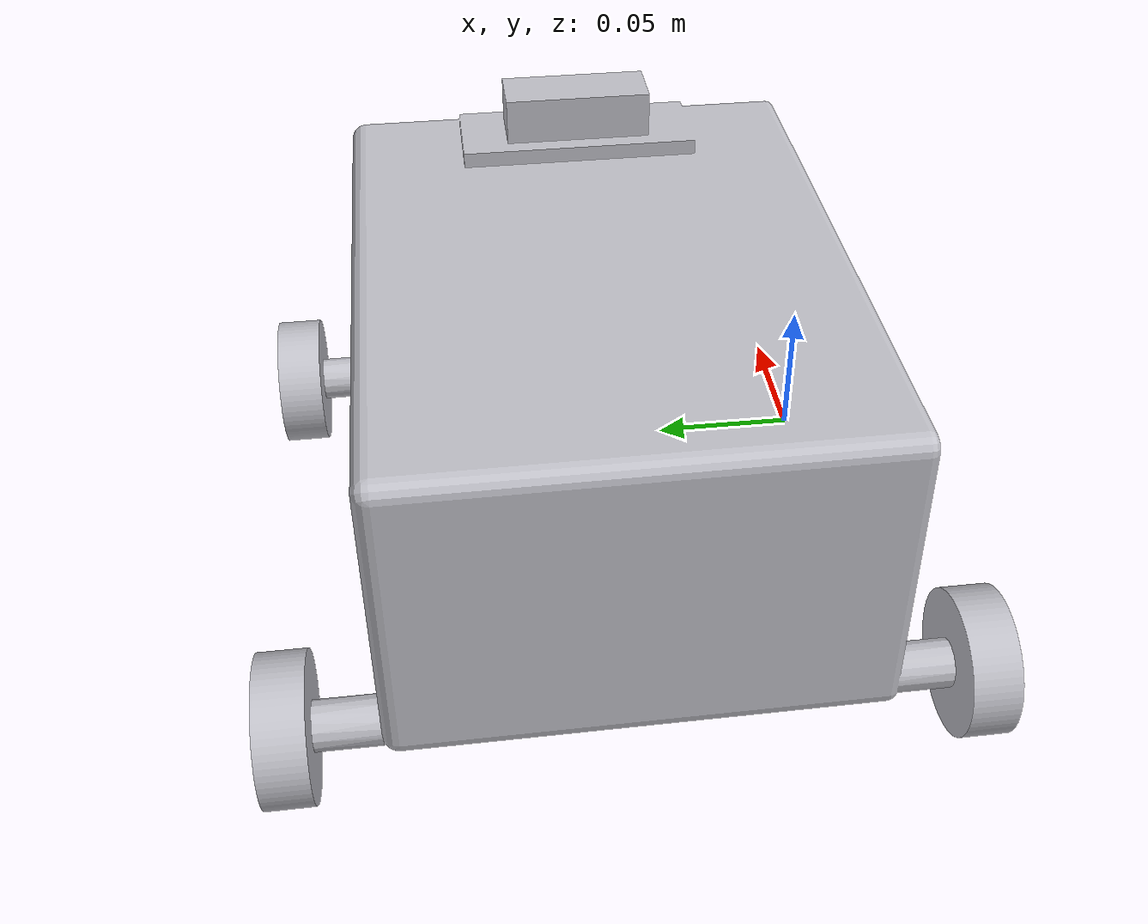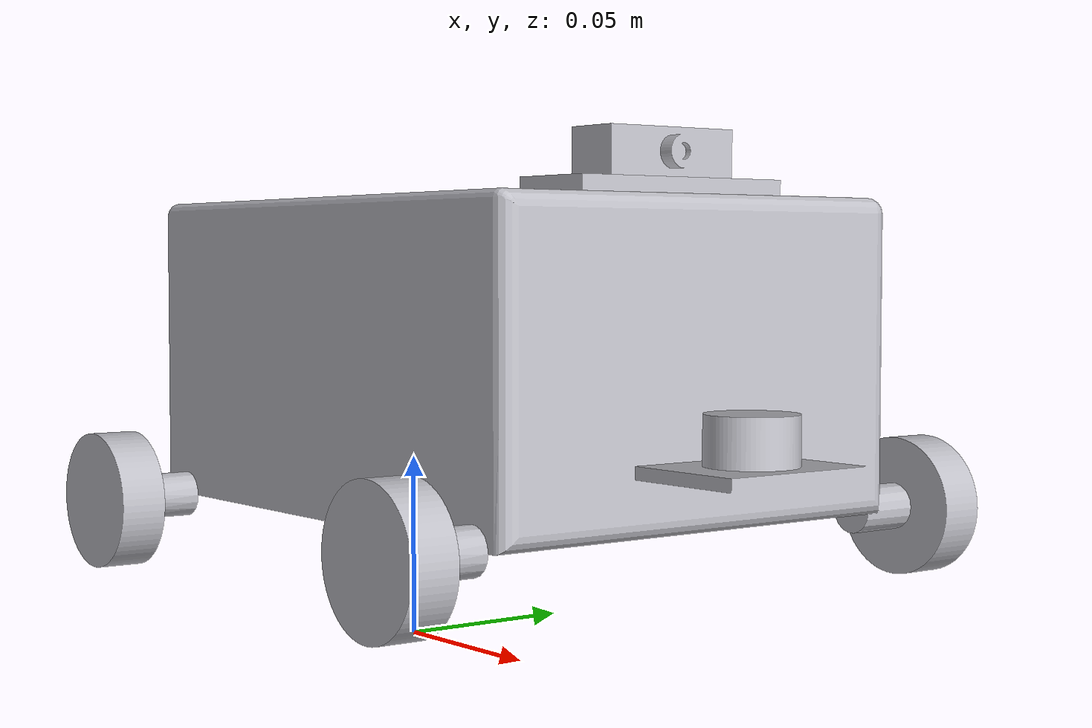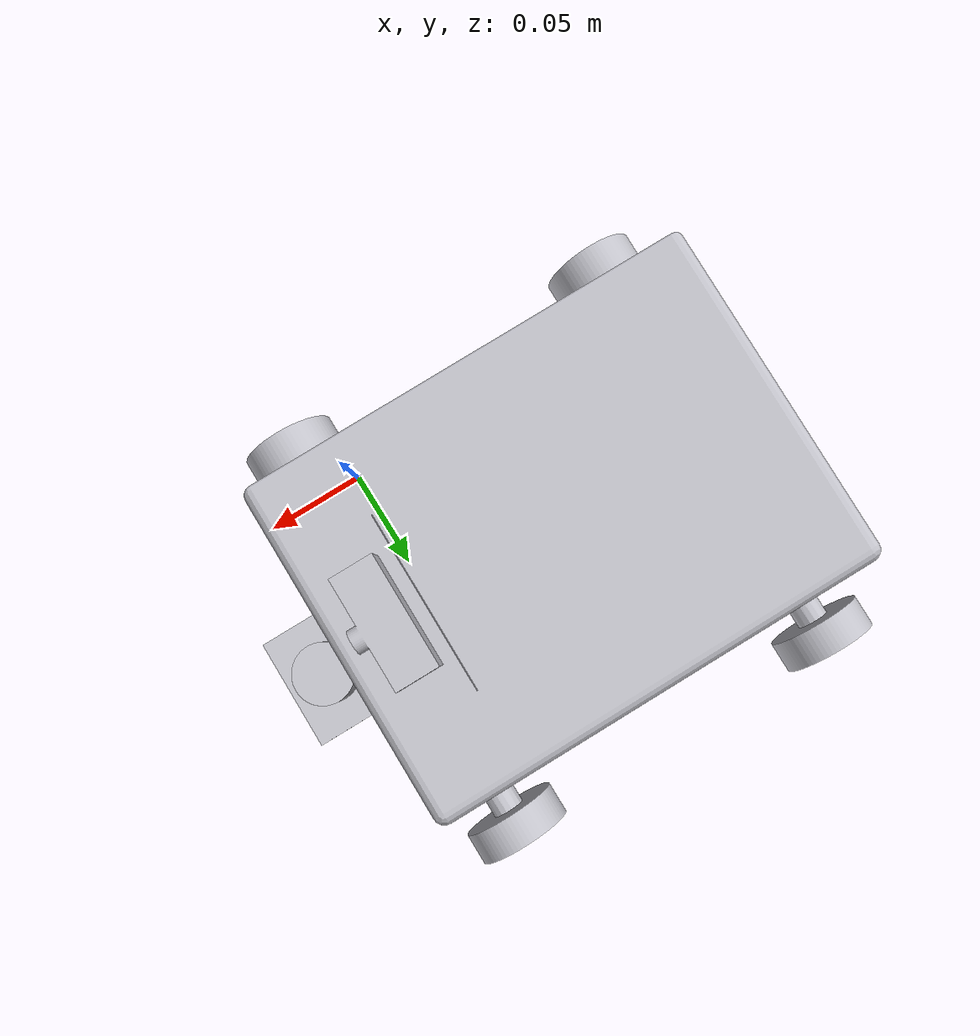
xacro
<?xml version="1.0" ?>
<robot name="rover" xmlns:xacro="http://www.ros.org/wiki/xacro">

<xacro:include filename="$(find rover_description)/urdf/materials.xacro" />
<xacro:include filename="$(find rover_description)/urdf/rover.trans" />
<xacro:include filename="$(find rover_description)/urdf/rover.gazebo" />
<link name="base_link">
  <inertial>
    <origin xyz="-0.06652261192800131 0.08242126200804338 0.07439492482956955" rpy="0 0 0"/>
    <mass value="23.767137838378318"/>
    <inertia ixx="0.064958" iyy="0.100462" izz="0.125192" ixy="5e-06" iyz="2.3e-05" ixz="-0.000117"/>
  </inertial>
  <visual>
    <origin xyz="0 0 0" rpy="0 0 0"/>
    <geometry>
      <mesh filename="package://rover_description/meshes/base_link.stl" scale="0.001 0.001 0.001"/>
    </geometry>
    <material name="silver"/>
  </visual>
  <collision>
    <origin xyz="0 0 0" rpy="0 0 0"/>
    <geometry>
      <mesh filename="package://rover_description/meshes/base_link.stl" scale="0.001 0.001 0.001"/>
    </geometry>
  </collision>
</link>

<link name="left_front_1">
  <inertial>
    <origin xyz="1.5586734620001708e-07 0.007500424124712135 3.8323520329397454e-07" rpy="0 0 0"/>
    <mass value="0.18727328332360021"/>
    <inertia ixx="2.7e-05" iyy="4.7e-05" izz="2.7e-05" ixy="-0.0" iyz="-0.0" ixz="-0.0"/>
  </inertial>
  <visual>
    <origin xyz="-0.017873 -0.177461 -0.024533" rpy="0 0 0"/>
    <geometry>
      <mesh filename="package://rover_description/meshes/left_front_1.stl" scale="0.001 0.001 0.001"/>
    </geometry>
    <material name="silver"/>
  </visual>
  <collision>
    <origin xyz="-0.017873 -0.177461 -0.024533" rpy="0 0 0"/>
    <geometry>
      <mesh filename="package://rover_description/meshes/left_front_1.stl" scale="0.001 0.001 0.001"/>
    </geometry>
  </collision>
</link>

<link name="left_back_1">
  <inertial>
    <origin xyz="1.558673462243032e-07 0.007500424124712107 3.8323520329397454e-07" rpy="0 0 0"/>
    <mass value="0.1872732833236003"/>
    <inertia ixx="2.7e-05" iyy="4.7e-05" izz="2.7e-05" ixy="0.0" iyz="-0.0" ixz="-0.0"/>
  </inertial>
  <visual>
    <origin xyz="0.152127 -0.177461 -0.024533" rpy="0 0 0"/>
    <geometry>
      <mesh filename="package://rover_description/meshes/left_back_1.stl" scale="0.001 0.001 0.001"/>
    </geometry>
    <material name="silver"/>
  </visual>
  <collision>
    <origin xyz="0.152127 -0.177461 -0.024533" rpy="0 0 0"/>
    <geometry>
      <mesh filename="package://rover_description/meshes/left_back_1.stl" scale="0.001 0.001 0.001"/>
    </geometry>
  </collision>
</link>

<link name="right_front_1">
  <inertial>
    <origin xyz="1.5586734622083376e-07 -0.007499575875287856 3.8323520329397454e-07" rpy="0 0 0"/>
    <mass value="0.18727328332360027"/>
    <inertia ixx="2.7e-05" iyy="4.7e-05" izz="2.7e-05" ixy="0.0" iyz="0.0" ixz="0.0"/>
  </inertial>
  <visual>
    <origin xyz="-0.017873 0.012539 -0.024533" rpy="0 0 0"/>
    <geometry>
      <mesh filename="package://rover_description/meshes/right_front_1.stl" scale="0.001 0.001 0.001"/>
    </geometry>
    <material name="silver"/>
  </visual>
  <collision>
    <origin xyz="-0.017873 0.012539 -0.024533" rpy="0 0 0"/>
    <geometry>
      <mesh filename="package://rover_description/meshes/right_front_1.stl" scale="0.001 0.001 0.001"/>
    </geometry>
  </collision>
</link>

<link name="right_back_1">
  <inertial>
    <origin xyz="1.5586734625205878e-07 -0.007499575875287852 3.8323520329397454e-07" rpy="0 0 0"/>
    <mass value="0.1872732833236003"/>
    <inertia ixx="2.7e-05" iyy="4.7e-05" izz="2.7e-05" ixy="-0.0" iyz="0.0" ixz="0.0"/>
  </inertial>
  <visual>
    <origin xyz="0.152127 0.012539 -0.024533" rpy="0 0 0"/>
    <geometry>
      <mesh filename="package://rover_description/meshes/right_back_1.stl" scale="0.001 0.001 0.001"/>
    </geometry>
    <material name="silver"/>
  </visual>
  <collision>
    <origin xyz="0.152127 0.012539 -0.024533" rpy="0 0 0"/>
    <geometry>
      <mesh filename="package://rover_description/meshes/right_back_1.stl" scale="0.001 0.001 0.001"/>
    </geometry>
  </collision>
</link>

<link name="lidar_1_1">
  <inertial>
    <origin xyz="1.5586734618960874e-07 0.0 0.007499985675995635" rpy="0 0 0"/>
    <mass value="0.07261301850054172"/>
    <inertia ixx="5e-06" iyy="5e-06" izz="7e-06" ixy="-0.0" iyz="0.0" ixz="0.0"/>
  </inertial>
  <visual>
    <origin xyz="-0.052873 -0.08 -0.046509" rpy="0 0 0"/>
    <geometry>
      <mesh filename="package://rover_description/meshes/lidar_1_1.stl" scale="0.001 0.001 0.001"/>
    </geometry>
    <material name="silver"/>
  </visual>
  <collision>
    <origin xyz="-0.052873 -0.08 -0.046509" rpy="0 0 0"/>
    <geometry>
      <mesh filename="package://rover_description/meshes/lidar_1_1.stl" scale="0.001 0.001 0.001"/>
    </geometry>
  </collision>
</link>

<link name="camera_1_1">
  <inertial>
    <origin xyz="0.00030250800131195396 4.241246829850276e-07 0.007502778404434668" rpy="0 0 0"/>
    <mass value="0.10501147446471709"/>
    <inertia ixx="2.1e-05" iyy="5e-06" izz="2.3e-05" ixy="0.0" iyz="0.0" ixz="-0.0"/>
  </inertial>
  <visual>
    <origin xyz="-0.007952 -0.081211 -0.129533" rpy="0 0 0"/>
    <geometry>
      <mesh filename="package://rover_description/meshes/camera_1_1.stl" scale="0.001 0.001 0.001"/>
    </geometry>
    <material name="silver"/>
  </visual>
  <collision>
    <origin xyz="-0.007952 -0.081211 -0.129533" rpy="0 0 0"/>
    <geometry>
      <mesh filename="package://rover_description/meshes/camera_1_1.stl" scale="0.001 0.001 0.001"/>
    </geometry>
  </collision>
</link>

<joint name="Rev1" type="continuous">
  <origin xyz="0.017873 0.177461 0.024533" rpy="0 0 0"/>
  <parent link="base_link"/>
  <child link="left_front_1"/>
  <axis xyz="0.0 1.0 0.0"/>
</joint>

<joint name="Rev2" type="continuous">
  <origin xyz="-0.152127 0.177461 0.024533" rpy="0 0 0"/>
  <parent link="base_link"/>
  <child link="left_back_1"/>
  <axis xyz="0.0 1.0 0.0"/>
</joint>

<joint name="Rev3" type="continuous">
  <origin xyz="0.017873 -0.012539 0.024533" rpy="0 0 0"/>
  <parent link="base_link"/>
  <child link="right_front_1"/>
  <axis xyz="0.0 -1.0 0.0"/>
</joint>

<joint name="Rev4" type="continuous">
  <origin xyz="-0.152127 -0.012539 0.024533" rpy="0 0 0"/>
  <parent link="base_link"/>
  <child link="right_back_1"/>
  <axis xyz="0.0 -1.0 0.0"/>
</joint>

<joint name="Rigid5" type="fixed">
  <origin xyz="0.052873 0.08 0.046509" rpy="0 0 0"/>
  <parent link="base_link"/>
  <child link="lidar_1_1"/>
</joint>

<joint name="Rigid6" type="fixed">
  <origin xyz="0.007952 0.081211 0.129533" rpy="0 0 0"/>
  <parent link="base_link"/>
  <child link="camera_1_1"/>
</joint>

</robot>

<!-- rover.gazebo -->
<robot name="rover" xmlns:xacro="http://www.ros.org/wiki/xacro" >

<xacro:property name="body_color" value="Gazebo/Silver" />
<xacro:property name="body_wheel" value="Gazebo/Black" />
<xacro:property name="body_lidar" value="Gazebo/Blue" />
<xacro:property name="body_camera" value="Gazebo/Green" />

<gazebo>
  <plugin name="control" filename="libgazebo_ros_control.so"/>
</gazebo>
<gazebo reference="base_link">
  <material>${body_color}</material>
  <mu1>0.2</mu1>
  <mu2>0.2</mu2>
  <selfCollide>true</selfCollide>
  <gravity>true</gravity>
</gazebo>

<gazebo reference="left_front_1">
  <material>${body_wheel}</material>
  <mu1>0.2</mu1>
  <mu2>0.2</mu2>
  <selfCollide>true</selfCollide>
</gazebo>

<gazebo reference="left_back_1">
  <material>${body_wheel}</material>
  <mu1>0.2</mu1>
  <mu2>0.2</mu2>
  <selfCollide>true</selfCollide>
</gazebo>

<gazebo reference="right_front_1">
  <material>${body_wheel}</material>
  <mu1>0.2</mu1>
  <mu2>0.2</mu2>
  <selfCollide>true</selfCollide>
</gazebo>

<gazebo reference="right_back_1">
  <material>${body_wheel}</material>
  <mu1>0.2</mu1>
  <mu2>0.2</mu2>
  <selfCollide>true</selfCollide>
</gazebo>

<gazebo reference="lidar_1_1">
  <material>${body_lidar}</material>
  <mu1>0.2</mu1>
  <mu2>0.2</mu2>
  <selfCollide>true</selfCollide>
</gazebo>

<gazebo reference="camera_1_1">
  <material>${body_camera}</material>
  <mu1>0.2</mu1>
  <mu2>0.2</mu2>
  <selfCollide>true</selfCollide>
</gazebo>

</robot>
